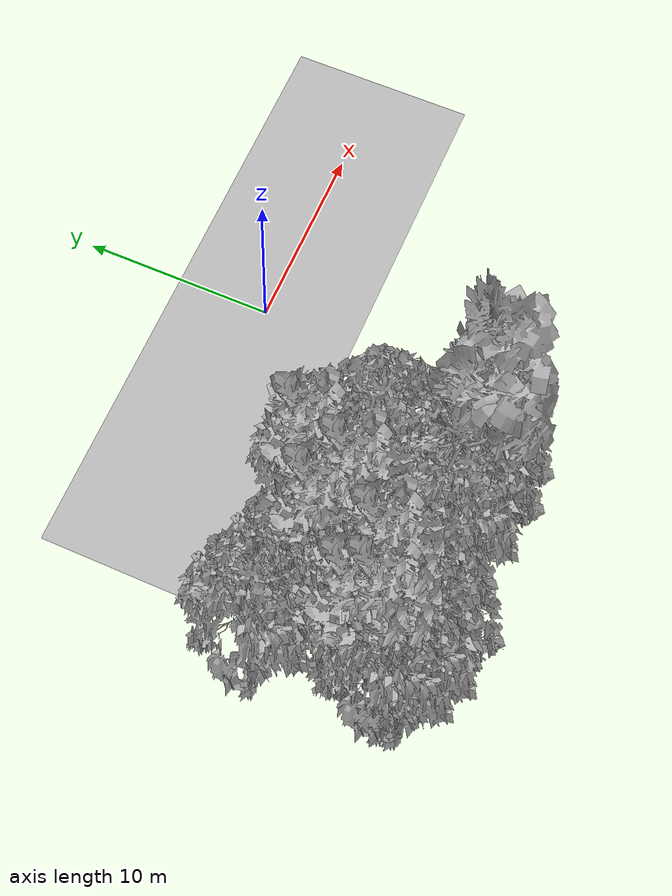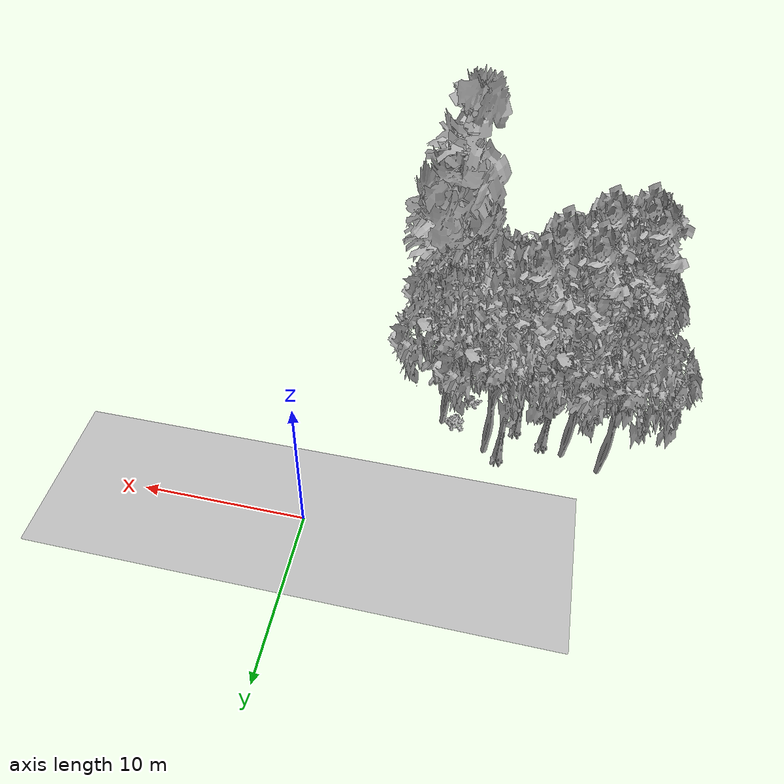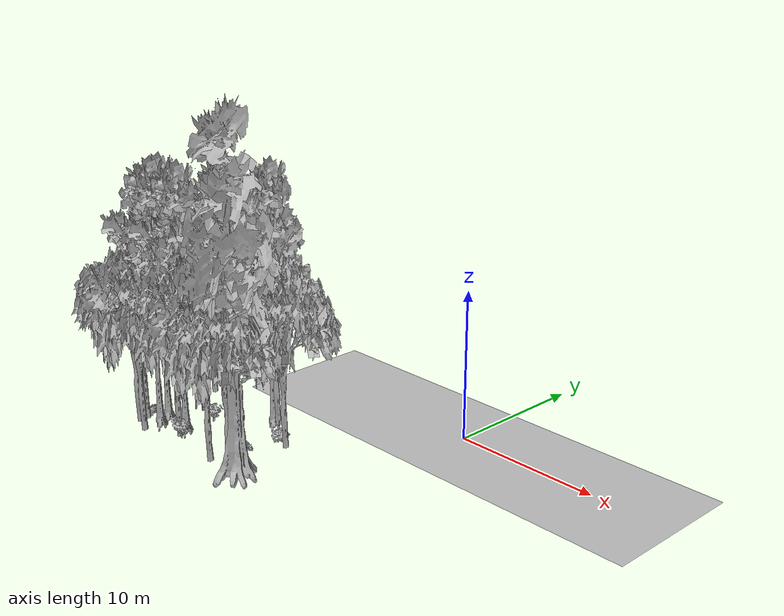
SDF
<sdf version="1.7">
 <world name="default">
  <model name="ground_plane">
   <static>1</static>
   <link name="link">
    <collision name="collision">
     <geometry><plane><normal>0 0 1</normal><size>100 100</size></plane></geometry>
     <surface><contact><ode><min_depth>0.01</min_depth><max_vel>0</max_vel></ode></contact></surface>
    </collision>
    <visual name="grass">
     <cast_shadows>0</cast_shadows>
     <geometry>
      <mesh>
       <scale>0.5814285714285714 0.18142857142857144 0.1</scale>
       <uri>file://grass_plane/meshes/grass_plane.dae</uri>
      </mesh>
     </geometry>
    </visual>
   </link>
  </model>
  <model name="Tree 79">
   <static>1</static>
   <pose>-12.877745542332619 -12.957526194848572 0 1.57079 -0 0</pose>
   <link name="link">
    <collision name="collision">
     <geometry><mesh><scale>3.5 5 3.5</scale><uri>model://tree_2/meshes/tree_2.obj</uri></mesh></geometry>
    </collision>
    <visual name="visual">
     <geometry><mesh><scale>3.5 5 3.5</scale><uri>model://tree_2/meshes/tree_2.obj</uri></mesh></geometry>
    </visual>
   </link>
  </model>
  <model name="Tree 100">
   <static>1</static>
   <pose>-16.31465250884569 -11.45571009760167 0 1.57079 -0 0</pose>
   <link name="link">
    <collision name="collision">
     <geometry><mesh><scale>3.5 5 3.5</scale><uri>model://tree_9/meshes/tree_9.obj</uri></mesh></geometry>
    </collision>
    <visual name="visual">
     <geometry><mesh><scale>3.5 5 3.5</scale><uri>model://tree_9/meshes/tree_9.obj</uri></mesh></geometry>
    </visual>
   </link>
  </model>
  <model name="Tree 106">
   <static>1</static>
   <pose>-9.879230077340189 -7.310933604977874 0 1.57079 -0 0</pose>
   <link name="link">
    <collision name="collision">
     <geometry><mesh><scale>3.5 5 3.5</scale><uri>model://tree_2/meshes/tree_2.obj</uri></mesh></geometry>
    </collision>
    <visual name="visual">
     <geometry><mesh><scale>3.5 5 3.5</scale><uri>model://tree_2/meshes/tree_2.obj</uri></mesh></geometry>
    </visual>
   </link>
  </model>
  <model name="Tree 124">
   <static>1</static>
   <pose>-6.976869645918455 -9.079480492510974 0 1.57079 -0 0</pose>
   <link name="link">
    <collision name="collision">
     <geometry><mesh><scale>3.5 5 3.5</scale><uri>model://tree_2/meshes/tree_2.obj</uri></mesh></geometry>
    </collision>
    <visual name="visual">
     <geometry><mesh><scale>3.5 5 3.5</scale><uri>model://tree_2/meshes/tree_2.obj</uri></mesh></geometry>
    </visual>
   </link>
  </model>
  <model name="Tree 151">
   <static>1</static>
   <pose>-6.977389700365954 -13.405392869318685 0 1.57079 -0 0</pose>
   <link name="link">
    <collision name="collision">
     <geometry><mesh><scale>3.5 5 3.5</scale><uri>model://tree_2/meshes/tree_2.obj</uri></mesh></geometry>
    </collision>
    <visual name="visual">
     <geometry><mesh><scale>3.5 5 3.5</scale><uri>model://tree_2/meshes/tree_2.obj</uri></mesh></geometry>
    </visual>
   </link>
  </model>
  <model name="Tree 175">
   <static>1</static>
   <pose>-16.491473903977862 -13.622075482826308 0 1.57079 -0 0</pose>
   <link name="link">
    <collision name="collision">
     <geometry><mesh><scale>3.5 5 3.5</scale><uri>model://tree_2/meshes/tree_2.obj</uri></mesh></geometry>
    </collision>
    <visual name="visual">
     <geometry><mesh><scale>3.5 5 3.5</scale><uri>model://tree_2/meshes/tree_2.obj</uri></mesh></geometry>
    </visual>
   </link>
  </model>
  <model name="Tree 192">
   <static>1</static>
   <pose>-13.872924267640663 -11.739734215223518 0 1.57079 -0 0</pose>
   <link name="link">
    <collision name="collision">
     <geometry><mesh><scale>3.5 5 3.5</scale><uri>model://tree_9/meshes/tree_9.obj</uri></mesh></geometry>
    </collision>
    <visual name="visual">
     <geometry><mesh><scale>3.5 5 3.5</scale><uri>model://tree_9/meshes/tree_9.obj</uri></mesh></geometry>
    </visual>
   </link>
  </model>
  <model name="Tree 226">
   <static>1</static>
   <pose>-14.999999531059864 -9.532611999827282 0 1.57079 -0 0</pose>
   <link name="link">
    <collision name="collision">
     <geometry><mesh><scale>3.5 5 3.5</scale><uri>model://tree_2/meshes/tree_2.obj</uri></mesh></geometry>
    </collision>
    <visual name="visual">
     <geometry><mesh><scale>3.5 5 3.5</scale><uri>model://tree_2/meshes/tree_2.obj</uri></mesh></geometry>
    </visual>
   </link>
  </model>
  <model name="Tree 227">
   <static>1</static>
   <pose>-16.566988686056014 -13.011574742016668 0 1.57079 -0 0</pose>
   <link name="link">
    <collision name="collision">
     <geometry><mesh><scale>3.5 5 3.5</scale><uri>model://tree_2/meshes/tree_2.obj</uri></mesh></geometry>
    </collision>
    <visual name="visual">
     <geometry><mesh><scale>3.5 5 3.5</scale><uri>model://tree_2/meshes/tree_2.obj</uri></mesh></geometry>
    </visual>
   </link>
  </model>
  <model name="Tree 254">
   <static>1</static>
   <pose>-16.930464873819954 -7.251357197398733 0 1.57079 -0 0</pose>
   <link name="link">
    <collision name="collision">
     <geometry><mesh><scale>3.5 5 3.5</scale><uri>model://tree_2/meshes/tree_2.obj</uri></mesh></geometry>
    </collision>
    <visual name="visual">
     <geometry><mesh><scale>3.5 5 3.5</scale><uri>model://tree_2/meshes/tree_2.obj</uri></mesh></geometry>
    </visual>
   </link>
  </model>
  <model name="Tree 255">
   <static>1</static>
   <pose>-15.168367359169956 -14.148622209665575 0 1.57079 -0 0</pose>
   <link name="link">
    <collision name="collision">
     <geometry><mesh><scale>3.5 5 3.5</scale><uri>model://tree_2/meshes/tree_2.obj</uri></mesh></geometry>
    </collision>
    <visual name="visual">
     <geometry><mesh><scale>3.5 5 3.5</scale><uri>model://tree_2/meshes/tree_2.obj</uri></mesh></geometry>
    </visual>
   </link>
  </model>
  <model name="Tree 274">
   <static>1</static>
   <pose>-6.1938381561083915 -13.381196133624897 0 1.57079 -0 0</pose>
   <link name="link">
    <collision name="collision">
     <geometry><mesh><scale>3.5 5 3.5</scale><uri>model://tree_4/meshes/tree_4.obj</uri></mesh></geometry>
    </collision>
    <visual name="visual">
     <geometry><mesh><scale>3.5 5 3.5</scale><uri>model://tree_4/meshes/tree_4.obj</uri></mesh></geometry>
    </visual>
   </link>
  </model>
  <model name="Tree 339">
   <static>1</static>
   <pose>-14.703721918866577 -8.041574927293386 0 1.57079 -0 0</pose>
   <link name="link">
    <collision name="collision">
     <geometry><mesh><scale>3.5 5 3.5</scale><uri>model://tree_2/meshes/tree_2.obj</uri></mesh></geometry>
    </collision>
    <visual name="visual">
     <geometry><mesh><scale>3.5 5 3.5</scale><uri>model://tree_2/meshes/tree_2.obj</uri></mesh></geometry>
    </visual>
   </link>
  </model>
  <model name="Tree 347">
   <static>1</static>
   <pose>-13.355510555837064 -8.631850406884176 0 1.57079 -0 0</pose>
   <link name="link">
    <collision name="collision">
     <geometry><mesh><scale>3.5 5 3.5</scale><uri>model://tree_9/meshes/tree_9.obj</uri></mesh></geometry>
    </collision>
    <visual name="visual">
     <geometry><mesh><scale>3.5 5 3.5</scale><uri>model://tree_9/meshes/tree_9.obj</uri></mesh></geometry>
    </visual>
   </link>
  </model>
  <model name="Tree 349">
   <static>1</static>
   <pose>-15.85481429580576 -12.405633883032246 0 1.57079 -0 0</pose>
   <link name="link">
    <collision name="collision">
     <geometry><mesh><scale>3.5 5 3.5</scale><uri>model://tree_9/meshes/tree_9.obj</uri></mesh></geometry>
    </collision>
    <visual name="visual">
     <geometry><mesh><scale>3.5 5 3.5</scale><uri>model://tree_9/meshes/tree_9.obj</uri></mesh></geometry>
    </visual>
   </link>
  </model>
  <model name="Tree 368">
   <static>1</static>
   <pose>-8.751283566085185 -13.598635052200057 0 1.57079 -0 0</pose>
   <link name="link">
    <collision name="collision">
     <geometry><mesh><scale>3.5 5 3.5</scale><uri>model://tree_2/meshes/tree_2.obj</uri></mesh></geometry>
    </collision>
    <visual name="visual">
     <geometry><mesh><scale>3.5 5 3.5</scale><uri>model://tree_2/meshes/tree_2.obj</uri></mesh></geometry>
    </visual>
   </link>
  </model>
  <model name="Tree 437">
   <static>1</static>
   <pose>-11.60867341895171 -9.45351798122189 0 1.57079 -0 0</pose>
   <link name="link">
    <collision name="collision">
     <geometry><mesh><scale>3.5 5 3.5</scale><uri>model://tree_9/meshes/tree_9.obj</uri></mesh></geometry>
    </collision>
    <visual name="visual">
     <geometry><mesh><scale>3.5 5 3.5</scale><uri>model://tree_9/meshes/tree_9.obj</uri></mesh></geometry>
    </visual>
   </link>
  </model>
  <model name="Tree 448">
   <static>1</static>
   <pose>-10.66548945533124 -6.982251747122735 0 1.57079 -0 0</pose>
   <link name="link">
    <collision name="collision">
     <geometry><mesh><scale>3.5 5 3.5</scale><uri>model://tree_9/meshes/tree_9.obj</uri></mesh></geometry>
    </collision>
    <visual name="visual">
     <geometry><mesh><scale>3.5 5 3.5</scale><uri>model://tree_9/meshes/tree_9.obj</uri></mesh></geometry>
    </visual>
   </link>
  </model>
  <model name="Bush 14">
   <static>1</static>
   <pose>-12.960979431824832 -10.162121370075589 0 1.57079 -0 0</pose>
   <link name="link">
    <collision name="collision">
     <geometry><mesh><scale>2 2 2</scale><uri>model://bush_0/meshes/bush_0.obj</uri></mesh></geometry>
     <surface><contact><collide_without_contact>false</collide_without_contact></contact></surface>
    </collision>
    <visual name="visual">
     <geometry><mesh><scale>2 2 2</scale><uri>model://bush_0/meshes/bush_0.obj</uri></mesh></geometry>
    </visual>
   </link>
  </model>
  <model name="Bush 35">
   <static>1</static>
   <pose>-7.611789617841964 -8.749623214521325 0 1.57079 -0 0</pose>
   <link name="link">
    <collision name="collision">
     <geometry><mesh><scale>2 2 2</scale><uri>model://bush_3/meshes/bush_3.obj</uri></mesh></geometry>
     <surface><contact><collide_without_contact>false</collide_without_contact></contact></surface>
    </collision>
    <visual name="visual">
     <geometry><mesh><scale>2 2 2</scale><uri>model://bush_3/meshes/bush_3.obj</uri></mesh></geometry>
    </visual>
   </link>
  </model>
  <model name="Bush 195">
   <static>1</static>
   <pose>-12.399303474186489 -13.110578735555361 0 1.57079 -0 0</pose>
   <link name="link">
    <collision name="collision">
     <geometry><mesh><scale>2 2 2</scale><uri>model://bush_0/meshes/bush_0.obj</uri></mesh></geometry>
     <surface><contact><collide_without_contact>false</collide_without_contact></contact></surface>
    </collision>
    <visual name="visual">
     <geometry><mesh><scale>2 2 2</scale><uri>model://bush_0/meshes/bush_0.obj</uri></mesh></geometry>
    </visual>
   </link>
  </model>
  <model name="Bush 245">
   <static>1</static>
   <pose>-17.07543781241439 -12.21453093555323 0 1.57079 -0 0</pose>
   <link name="link">
    <collision name="collision">
     <geometry><mesh><scale>2 2 2</scale><uri>model://bush_2/meshes/bush_2.obj</uri></mesh></geometry>
     <surface><contact><collide_without_contact>false</collide_without_contact></contact></surface>
    </collision>
    <visual name="visual">
     <geometry><mesh><scale>2 2 2</scale><uri>model://bush_2/meshes/bush_2.obj</uri></mesh></geometry>
    </visual>
   </link>
  </model>
  <model name="Bush 316">
   <static>1</static>
   <pose>-8.568562309047373 -11.082231419213528 0 1.57079 -0 0</pose>
   <link name="link">
    <collision name="collision">
     <geometry><mesh><scale>2 2 2</scale><uri>model://bush_2/meshes/bush_2.obj</uri></mesh></geometry>
     <surface><contact><collide_without_contact>false</collide_without_contact></contact></surface>
    </collision>
    <visual name="visual">
     <geometry><mesh><scale>2 2 2</scale><uri>model://bush_2/meshes/bush_2.obj</uri></mesh></geometry>
    </visual>
   </link>
  </model>
 </world>
</sdf>
